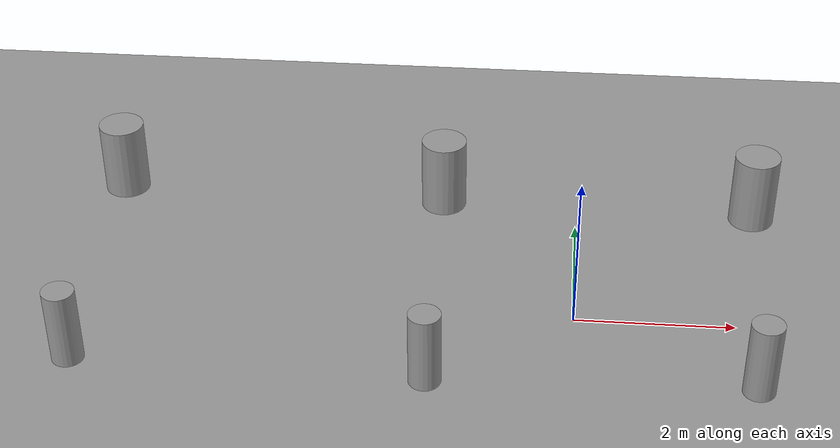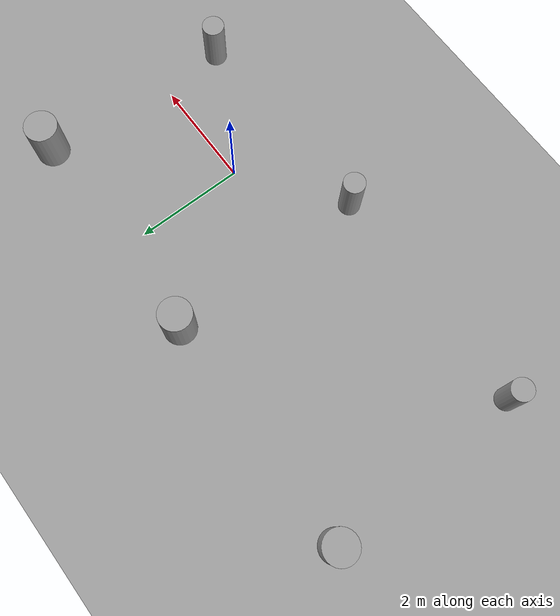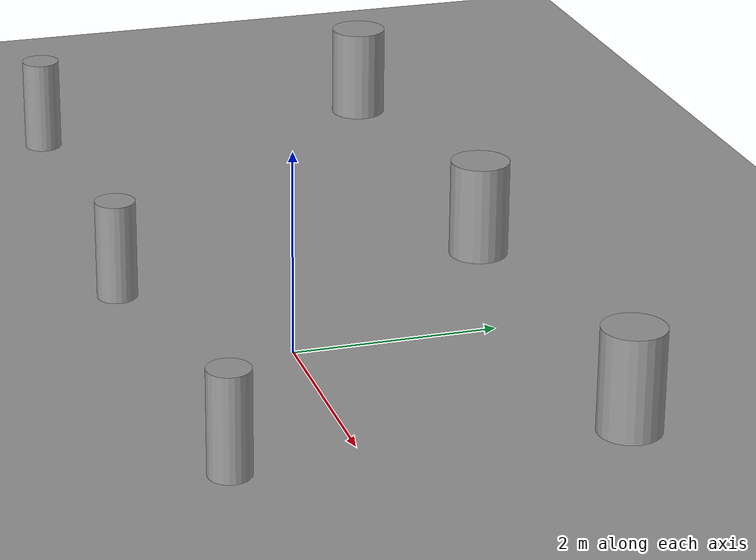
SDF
<sdf version="1.6">
 <world name="default">
  <model name="ground_plane_0">
   <static>1</static>
   <link name="link">
    <collision name="collision">
     <geometry><plane><normal>0 0 1</normal><size>100 100</size></plane></geometry>
     <surface><friction><ode><mu>100</mu><mu2>50</mu2></ode></friction></surface>
    </collision>
    <visual name="visual">
     <cast_shadows>0</cast_shadows>
     <geometry><plane><normal>0 0 1</normal><size>100 100</size></plane></geometry>
     <material>
      <script><uri>file://media/materials/scripts/gazebo.material</uri><name>Gazebo/Grey</name></script>
     </material>
    </visual>
    <velocity_decay><linear>0</linear><angular>0</angular></velocity_decay>
   </link>
   <pose>0.497681 0 0 0 -0 0</pose>
  </model>
  <model name="cylinder_right_clone">
   <link name="link_0">
    <inertial>
     <mass>1</mass>
     <inertia><ixx>0.145833</ixx><ixy>0</ixy><ixz>0</ixz><iyy>0.145833</iyy><iyz>0</iyz><izz>0.125</izz></inertia>
    </inertial>
    <visual name="visual">
     <geometry><cylinder><radius>0.2</radius><length>1</length></cylinder></geometry>
     <material>
      <lighting>1</lighting>
      <script><uri>file://media/materials/scripts/gazebo.material</uri><name>Gazebo/Grey</name></script>
      <ambient>0.3 0.3 0.3 1</ambient>
      <diffuse>0.7 0.7 0.7 1</diffuse>
      <specular>0.01 0.01 0.01 1</specular>
      <emissive>0 0 0 1</emissive>
      <shader type="vertex"><normal_map>__default__</normal_map></shader>
     </material>
    </visual>
    <collision name="collision">
     <geometry><cylinder><radius>0.2</radius><length>1</length></cylinder></geometry>
     <surface>
      <friction>
       <ode><mu>1</mu><mu2>1</mu2><fdir1>0 0 0</fdir1><slip1>0</slip1><slip2>0</slip2></ode>
       <torsional>
        <coefficient>1</coefficient>
        <patch_radius>0</patch_radius>
        <surface_radius>0</surface_radius>
        <use_patch_radius>1</use_patch_radius>
        <ode><slip>0</slip></ode>
       </torsional>
      </friction>
      <bounce><restitution_coefficient>0</restitution_coefficient><threshold>1e+06</threshold></bounce>
      <contact>
       <collide_without_contact>0</collide_without_contact>
       <collide_without_contact_bitmask>1</collide_without_contact_bitmask>
       <collide_bitmask>1</collide_bitmask>
       <ode>
        <soft_cfm>0</soft_cfm>
        <soft_erp>0.2</soft_erp>
        <kp>1e+13</kp>
        <kd>1</kd>
        <max_vel>0.01</max_vel>
        <min_depth>0</min_depth>
       </ode>
       <bullet>
        <split_impulse>1</split_impulse>
        <split_impulse_penetration_threshold>-0.01</split_impulse_penetration_threshold>
        <soft_cfm>0</soft_cfm>
        <soft_erp>0.2</soft_erp>
        <kp>1e+13</kp>
        <kd>1</kd>
       </bullet>
      </contact>
     </surface>
    </collision>
   </link>
   <static>0</static>
   <pose>-1.75402 -1.29662 0.49912 0 -0 0.000422</pose>
  </model>
  <model name="cylinder_left">
   <link name="link_1">
    <inertial>
     <mass>1</mass>
     <inertia><ixx>0.145833</ixx><ixy>0</ixy><ixz>0</ixz><iyy>0.145833</iyy><iyz>0</iyz><izz>0.125</izz></inertia>
    </inertial>
    <visual name="visual">
     <geometry><cylinder><radius>0.3</radius><length>1</length></cylinder></geometry>
     <material>
      <lighting>1</lighting>
      <script><uri>file://media/materials/scripts/gazebo.material</uri><name>Gazebo/Grey</name></script>
      <ambient>0.3 0.3 0.3 1</ambient>
      <diffuse>0.7 0.7 0.7 1</diffuse>
      <specular>0.01 0.01 0.01 1</specular>
      <emissive>0 0 0 1</emissive>
      <shader type="vertex"><normal_map>__default__</normal_map></shader>
     </material>
    </visual>
    <collision name="collision">
     <geometry><cylinder><radius>0.3</radius><length>1</length></cylinder></geometry>
     <surface>
      <friction>
       <ode><mu>1</mu><mu2>1</mu2><fdir1>0 0 0</fdir1><slip1>0</slip1><slip2>0</slip2></ode>
       <torsional>
        <coefficient>1</coefficient>
        <patch_radius>0</patch_radius>
        <surface_radius>0</surface_radius>
        <use_patch_radius>1</use_patch_radius>
        <ode><slip>0</slip></ode>
       </torsional>
      </friction>
      <bounce><restitution_coefficient>0</restitution_coefficient><threshold>1e+06</threshold></bounce>
      <contact>
       <collide_without_contact>0</collide_without_contact>
       <collide_without_contact_bitmask>1</collide_without_contact_bitmask>
       <collide_bitmask>1</collide_bitmask>
       <ode>
        <soft_cfm>0</soft_cfm>
        <soft_erp>0.2</soft_erp>
        <kp>1e+13</kp>
        <kd>1</kd>
        <max_vel>0.01</max_vel>
        <min_depth>0</min_depth>
       </ode>
       <bullet>
        <split_impulse>1</split_impulse>
        <split_impulse_penetration_threshold>-0.01</split_impulse_penetration_threshold>
        <soft_cfm>0</soft_cfm>
        <soft_erp>0.2</soft_erp>
        <kp>1e+13</kp>
        <kd>1</kd>
       </bullet>
      </contact>
     </surface>
    </collision>
   </link>
   <static>0</static>
   <pose>-1.80216 2.46852 0.49912 0 -0 0</pose>
  </model>
  <model name="cylinder_left_clone">
   <link name="link_1">
    <inertial>
     <mass>1</mass>
     <inertia><ixx>0.145833</ixx><ixy>0</ixy><ixz>0</ixz><iyy>0.145833</iyy><iyz>0</iyz><izz>0.125</izz></inertia>
    </inertial>
    <visual name="visual">
     <geometry><cylinder><radius>0.3</radius><length>1</length></cylinder></geometry>
     <material>
      <lighting>1</lighting>
      <script><uri>file://media/materials/scripts/gazebo.material</uri><name>Gazebo/Grey</name></script>
      <ambient>0.3 0.3 0.3 1</ambient>
      <diffuse>0.7 0.7 0.7 1</diffuse>
      <specular>0.01 0.01 0.01 1</specular>
      <emissive>0 0 0 1</emissive>
      <shader type="vertex"><normal_map>__default__</normal_map></shader>
     </material>
    </visual>
    <collision name="collision">
     <geometry><cylinder><radius>0.3</radius><length>1</length></cylinder></geometry>
     <surface>
      <friction>
       <ode><mu>1</mu><mu2>1</mu2><fdir1>0 0 0</fdir1><slip1>0</slip1><slip2>0</slip2></ode>
       <torsional>
        <coefficient>1</coefficient>
        <patch_radius>0</patch_radius>
        <surface_radius>0</surface_radius>
        <use_patch_radius>1</use_patch_radius>
        <ode><slip>0</slip></ode>
       </torsional>
      </friction>
      <bounce><restitution_coefficient>0</restitution_coefficient><threshold>1e+06</threshold></bounce>
      <contact>
       <collide_without_contact>0</collide_without_contact>
       <collide_without_contact_bitmask>1</collide_without_contact_bitmask>
       <collide_bitmask>1</collide_bitmask>
       <ode>
        <soft_cfm>0</soft_cfm>
        <soft_erp>0.2</soft_erp>
        <kp>1e+13</kp>
        <kd>1</kd>
        <max_vel>0.01</max_vel>
        <min_depth>0</min_depth>
       </ode>
       <bullet>
        <split_impulse>1</split_impulse>
        <split_impulse_penetration_threshold>-0.01</split_impulse_penetration_threshold>
        <soft_cfm>0</soft_cfm>
        <soft_erp>0.2</soft_erp>
        <kp>1e+13</kp>
        <kd>1</kd>
       </bullet>
      </contact>
     </surface>
    </collision>
   </link>
   <static>0</static>
   <pose>2.36241 2.40356 0.49912 0 -0 0</pose>
  </model>
  <model name="cylinder_right_clone_10">
   <link name="link_0">
    <inertial>
     <mass>1</mass>
     <inertia><ixx>0.145833</ixx><ixy>0</ixy><ixz>0</ixz><iyy>0.145833</iyy><iyz>0</iyz><izz>0.125</izz></inertia>
    </inertial>
    <visual name="visual">
     <geometry><cylinder><radius>0.2</radius><length>1</length></cylinder></geometry>
     <material>
      <lighting>1</lighting>
      <script><uri>file://media/materials/scripts/gazebo.material</uri><name>Gazebo/Grey</name></script>
      <ambient>0.3 0.3 0.3 1</ambient>
      <diffuse>0.7 0.7 0.7 1</diffuse>
      <specular>0.01 0.01 0.01 1</specular>
      <emissive>0 0 0 1</emissive>
      <shader type="vertex"><normal_map>__default__</normal_map></shader>
     </material>
    </visual>
    <collision name="collision">
     <geometry><cylinder><radius>0.2</radius><length>1</length></cylinder></geometry>
     <surface>
      <friction>
       <ode><mu>1</mu><mu2>1</mu2><fdir1>0 0 0</fdir1><slip1>0</slip1><slip2>0</slip2></ode>
       <torsional>
        <coefficient>1</coefficient>
        <patch_radius>0</patch_radius>
        <surface_radius>0</surface_radius>
        <use_patch_radius>1</use_patch_radius>
        <ode><slip>0</slip></ode>
       </torsional>
      </friction>
      <bounce><restitution_coefficient>0</restitution_coefficient><threshold>1e+06</threshold></bounce>
      <contact>
       <collide_without_contact>0</collide_without_contact>
       <collide_without_contact_bitmask>1</collide_without_contact_bitmask>
       <collide_bitmask>1</collide_bitmask>
       <ode>
        <soft_cfm>0</soft_cfm>
        <soft_erp>0.2</soft_erp>
        <kp>1e+13</kp>
        <kd>1</kd>
        <max_vel>0.01</max_vel>
        <min_depth>0</min_depth>
       </ode>
       <bullet>
        <split_impulse>1</split_impulse>
        <split_impulse_penetration_threshold>-0.01</split_impulse_penetration_threshold>
        <soft_cfm>0</soft_cfm>
        <soft_erp>0.2</soft_erp>
        <kp>1e+13</kp>
        <kd>1</kd>
       </bullet>
      </contact>
     </surface>
    </collision>
   </link>
   <static>0</static>
   <pose>2.19522 -1.17916 0.49912 0 -0 0.000408</pose>
  </model>
  <model name="cylinder_right_clone_clone_0">
   <link name="link_0">
    <inertial>
     <mass>1</mass>
     <inertia><ixx>0.145833</ixx><ixy>0</ixy><ixz>0</ixz><iyy>0.145833</iyy><iyz>0</iyz><izz>0.125</izz></inertia>
    </inertial>
    <visual name="visual">
     <geometry><cylinder><radius>0.2</radius><length>1</length></cylinder></geometry>
     <material>
      <lighting>1</lighting>
      <script><uri>file://media/materials/scripts/gazebo.material</uri><name>Gazebo/Grey</name></script>
      <ambient>0.3 0.3 0.3 1</ambient>
      <diffuse>0.7 0.7 0.7 1</diffuse>
      <specular>0.01 0.01 0.01 1</specular>
      <emissive>0 0 0 1</emissive>
      <shader type="vertex"><normal_map>__default__</normal_map></shader>
     </material>
    </visual>
    <collision name="collision">
     <geometry><cylinder><radius>0.2</radius><length>1</length></cylinder></geometry>
     <surface>
      <friction>
       <ode><mu>1</mu><mu2>1</mu2><fdir1>0 0 0</fdir1><slip1>0</slip1><slip2>0</slip2></ode>
       <torsional>
        <coefficient>1</coefficient>
        <patch_radius>0</patch_radius>
        <surface_radius>0</surface_radius>
        <use_patch_radius>1</use_patch_radius>
        <ode><slip>0</slip></ode>
       </torsional>
      </friction>
      <bounce><restitution_coefficient>0</restitution_coefficient><threshold>1e+06</threshold></bounce>
      <contact>
       <collide_without_contact>0</collide_without_contact>
       <collide_without_contact_bitmask>1</collide_without_contact_bitmask>
       <collide_bitmask>1</collide_bitmask>
       <ode>
        <soft_cfm>0</soft_cfm>
        <soft_erp>0.2</soft_erp>
        <kp>1e+13</kp>
        <kd>1</kd>
        <max_vel>0.01</max_vel>
        <min_depth>0</min_depth>
       </ode>
       <bullet>
        <split_impulse>1</split_impulse>
        <split_impulse_penetration_threshold>-0.01</split_impulse_penetration_threshold>
        <soft_cfm>0</soft_cfm>
        <soft_erp>0.2</soft_erp>
        <kp>1e+13</kp>
        <kd>1</kd>
       </bullet>
      </contact>
     </surface>
    </collision>
   </link>
   <static>0</static>
   <pose>-6.0931 -1.20387 0.49912 0 -0 0.000419</pose>
  </model>
  <model name="cylinder_left_clone_2_clone_15_clone_10">
   <link name="link_1">
    <inertial>
     <mass>1</mass>
     <inertia><ixx>0.145833</ixx><ixy>0</ixy><ixz>0</ixz><iyy>0.145833</iyy><iyz>0</iyz><izz>0.125</izz></inertia>
    </inertial>
    <visual name="visual">
     <geometry><cylinder><radius>0.3</radius><length>1</length></cylinder></geometry>
     <material>
      <lighting>1</lighting>
      <script><uri>file://media/materials/scripts/gazebo.material</uri><name>Gazebo/Grey</name></script>
      <ambient>0.3 0.3 0.3 1</ambient>
      <diffuse>0.7 0.7 0.7 1</diffuse>
      <specular>0.01 0.01 0.01 1</specular>
      <emissive>0 0 0 1</emissive>
      <shader type="vertex"><normal_map>__default__</normal_map></shader>
     </material>
    </visual>
    <collision name="collision">
     <geometry><cylinder><radius>0.3</radius><length>1</length></cylinder></geometry>
     <surface>
      <friction>
       <ode><mu>1</mu><mu2>1</mu2><fdir1>0 0 0</fdir1><slip1>0</slip1><slip2>0</slip2></ode>
       <torsional>
        <coefficient>1</coefficient>
        <patch_radius>0</patch_radius>
        <surface_radius>0</surface_radius>
        <use_patch_radius>1</use_patch_radius>
        <ode><slip>0</slip></ode>
       </torsional>
      </friction>
      <bounce><restitution_coefficient>0</restitution_coefficient><threshold>1e+06</threshold></bounce>
      <contact>
       <collide_without_contact>0</collide_without_contact>
       <collide_without_contact_bitmask>1</collide_without_contact_bitmask>
       <collide_bitmask>1</collide_bitmask>
       <ode>
        <soft_cfm>0</soft_cfm>
        <soft_erp>0.2</soft_erp>
        <kp>1e+13</kp>
        <kd>1</kd>
        <max_vel>0.01</max_vel>
        <min_depth>0</min_depth>
       </ode>
       <bullet>
        <split_impulse>1</split_impulse>
        <split_impulse_penetration_threshold>-0.01</split_impulse_penetration_threshold>
        <soft_cfm>0</soft_cfm>
        <soft_erp>0.2</soft_erp>
        <kp>1e+13</kp>
        <kd>1</kd>
       </bullet>
      </contact>
     </surface>
    </collision>
   </link>
   <static>0</static>
   <pose>-6.21936 2.54337 0.49912 0 -0 1.95059</pose>
  </model>
 </world>
</sdf>
